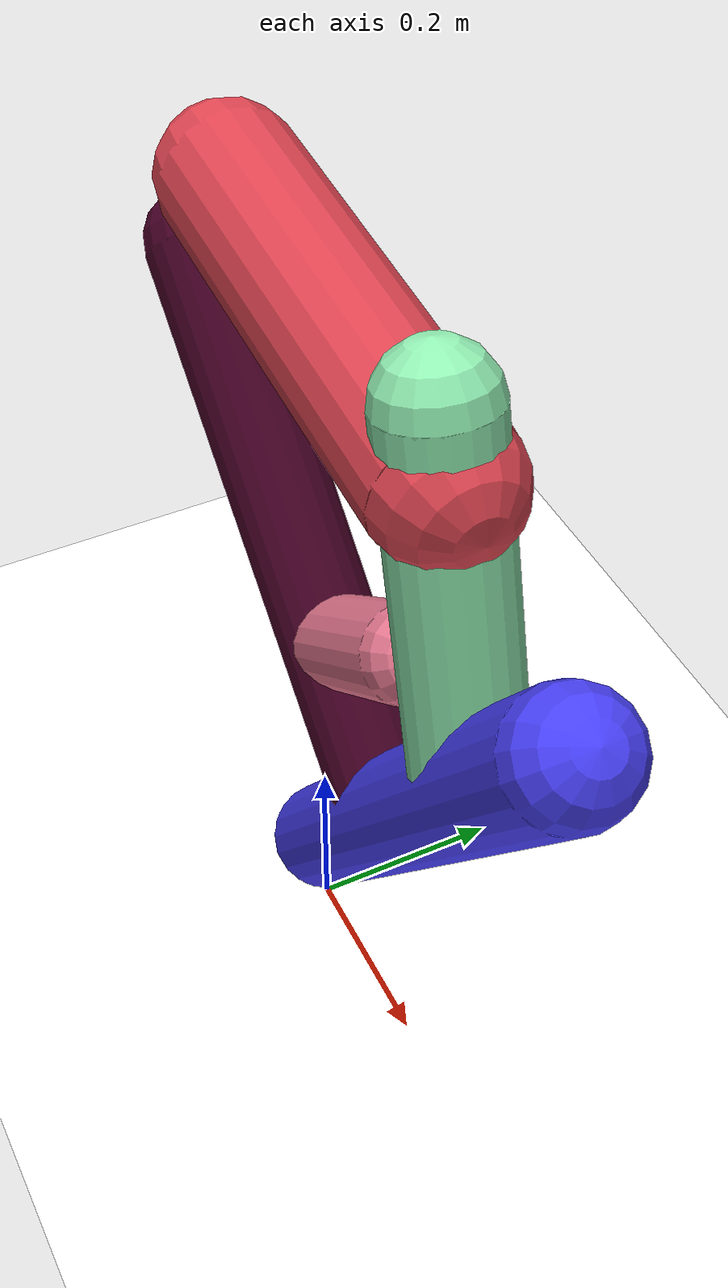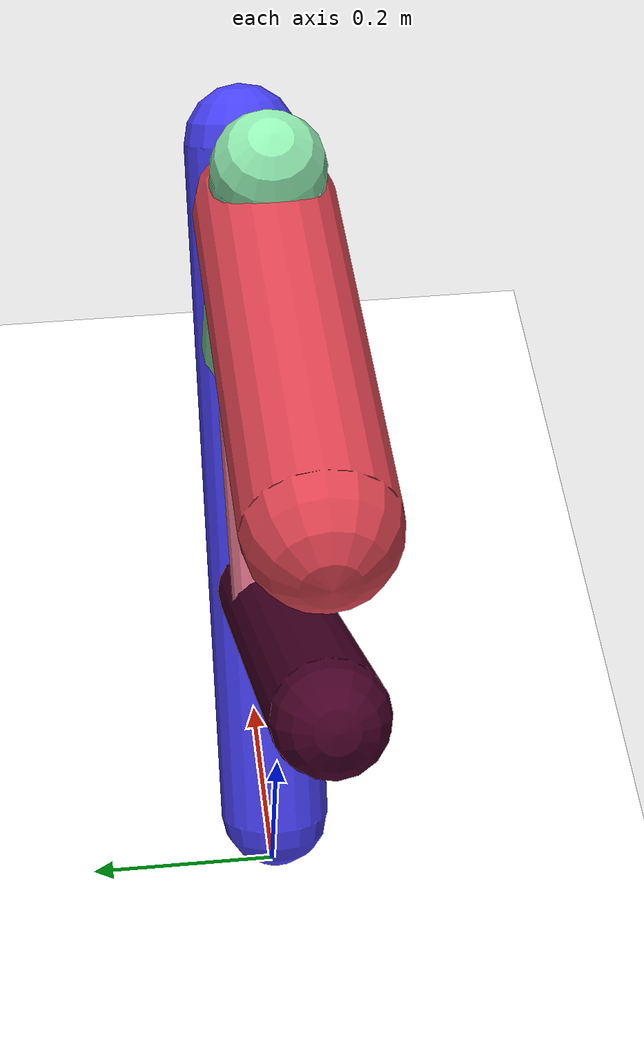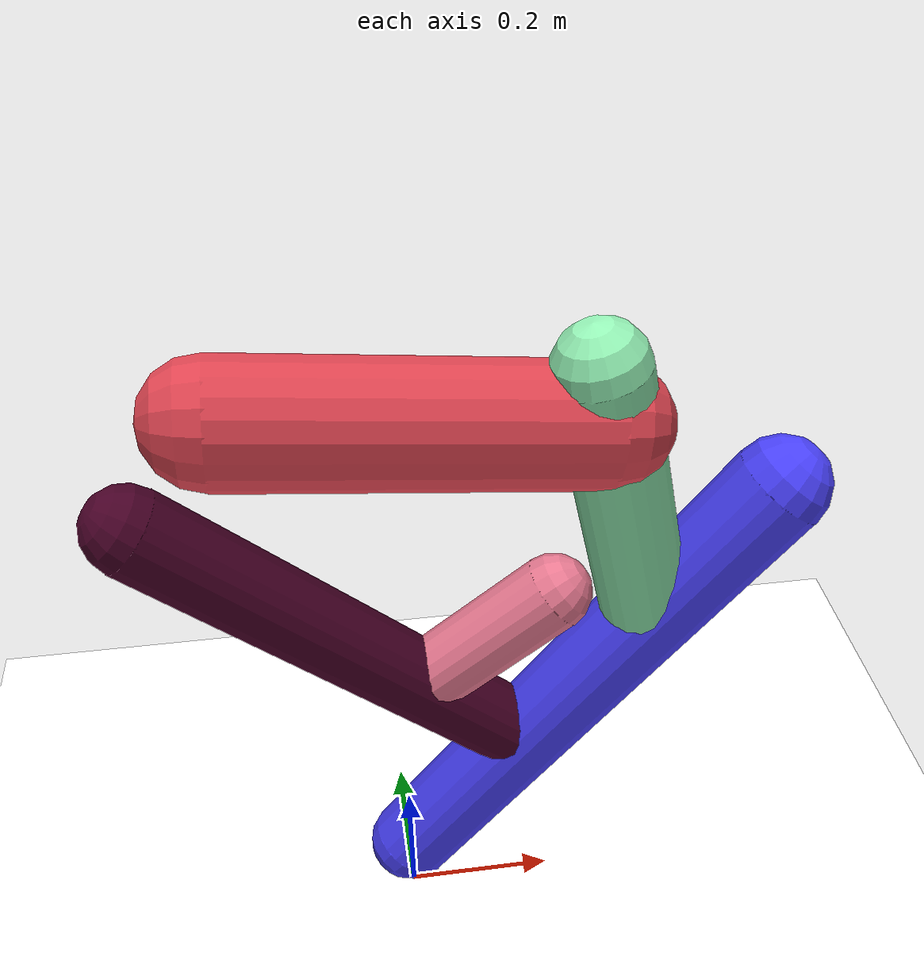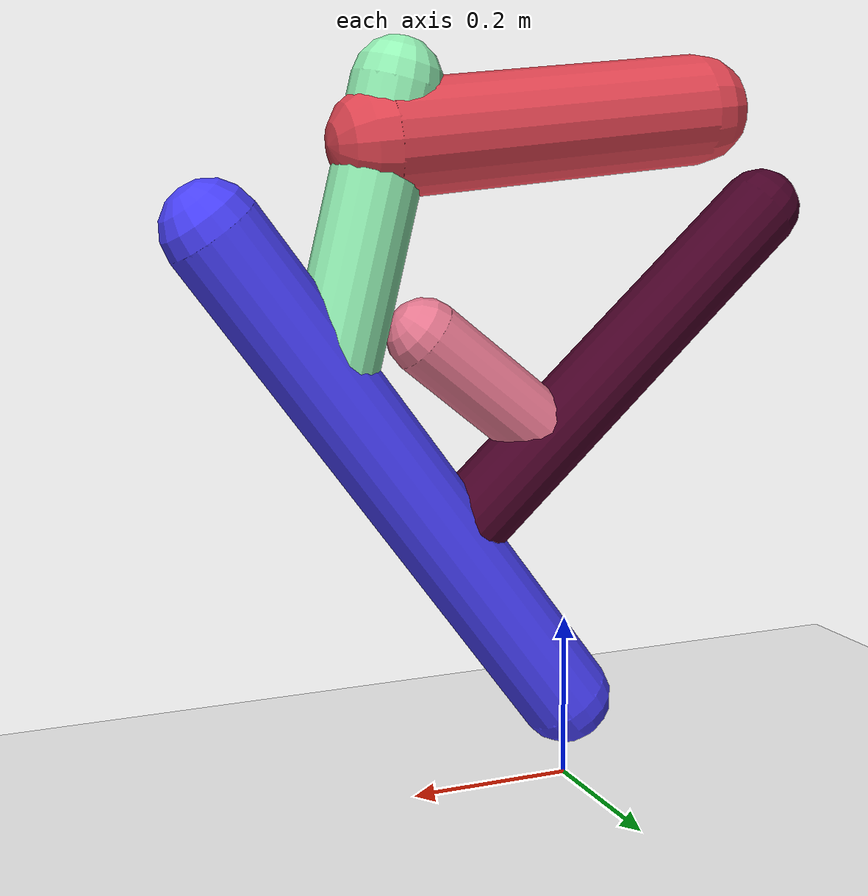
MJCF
<mujoco model="morphology">
  <option timestep="0.01"/>
  <default>
    <default class="/"/>
    <default class="0/"/>
    <default class="0/1/"/>
    <default class="0/1/2/"/>
    <default class="0/3/"/>
    <default class="0/3/4/"/>
  </default>
  <asset>
    <texture name="texplane" type="2d" builtin="checker" rgb1="0.10000000000000001 0.20000000000000001 0.29999999999999999" rgb2="0.20000000000000001 0.29999999999999999 0.40000000000000002" width="300" height="300"/>
    <material name="MatPlane" class="/" texture="texplane" texrepeat="20 20" specular="1" shininess="1" reflectance="0.5"/>
  </asset>
  <worldbody>
    <light name="//unnamed_light_0" class="/" directional="true" pos="0 0 1.5" dir="0 0 -1.3" cutoff="100" exponent="1" diffuse="1 1 1" specular="0.10000000000000001 0.10000000000000001 0.10000000000000001"/>
    <geom name="ground" class="/" type="plane" size="15 15 0.5" material="MatPlane" rgba="1 1 1 1"/>
    <site name="body" class="/" size="9.9999999999999995e-07 9.9999999999999995e-07 9.9999999999999995e-07" pos="0 0 0.10000000000000001"/>
    <body pos="0 0 0.10000000000000001" name="0/">
      <joint name="0/rootx/" class="/" type="slide" axis="1 0 0" limited="false" stiffness="0" armature="0" damping="0"/>
      <joint name="0/rootz/" class="/" type="slide" axis="0 0 1" limited="false" stiffness="0" armature="0" damping="0"/>
      <joint name="0/rooty/" class="/" type="hinge" axis="0 1 0" limited="false" stiffness="0" armature="0" damping="0"/>
      <geom name="0/geom" class="0/" type="capsule" contype="1" conaffinity="1" condim="3" size="0.057671728853075331" rgba="0.28042939053885108 0.24994570048540554 0.97153832646139771 1" friction="0.59999999999999998 0.10000000000000001 0.10000000000000001" fromto="0 0 0 0.42875962921058308 0 0.58224699517407896"/>
      <site name="0/end0" class="0/" size="0.0050000000000000001" pos="0.42875962921058308 0 0.58224699517407896"/>
      <site name="0/attach1" class="0/" size="9.9999999999999995e-07 9.9999999999999995e-07 9.9999999999999995e-07" pos="0.15469903014084058 0 0.21007818674927015"/>
      <body pos="0.15469903014084058 0 0.21007818674927015" name="0/1/">
        <joint name="0/1/joint/" class="0/" type="hinge" axis="0 1 0" limited="true" range="-58.882753140526518 58.882753140526518"/>
        <geom name="0/1/geom" class="0/1/" type="capsule" contype="1" conaffinity="1" condim="3" size="0.050147764539845208" rgba="0.27513241498482566 0.0035440290573005573 0.14730877564402689 1" friction="0.59999999999999998 0.10000000000000001 0.10000000000000001" fromto="0 0 0 -0.42373567326627143 0 0.3897360082590986"/>
        <site name="0/1/end1" class="0/1/" size="0.0050000000000000001" pos="-0.42373567326627143 0 0.3897360082590986"/>
        <site name="0/1/attach2" class="0/1/" size="9.9999999999999995e-07 9.9999999999999995e-07 9.9999999999999995e-07" pos="-0.12993030624827273 0 0.11950496997042603"/>
        <body pos="-0.12993030624827273 0 0.11950496997042603" name="0/1/2/">
          <geom name="0/1/2/geom" class="0/1/2/" type="capsule" contype="1" conaffinity="1" condim="3" size="0.045743136458458143" rgba="0.89397653326020821 0.46571811532186214 0.55848215367746312 1" friction="0.59999999999999998 0.10000000000000001 0.10000000000000001" fromto="0 0 0 0.15765511266270382 0 0.12768950476234875"/>
          <site name="0/1/2/end2" class="0/1/2/" size="0.0050000000000000001" pos="0.15765511266270382 0 0.12768950476234875"/>
        </body>
      </body>
      <site name="0/attach3" class="0/" size="9.9999999999999995e-07 9.9999999999999995e-07 9.9999999999999995e-07" pos="0.29853025917503107 0 0.40539811710638191"/>
      <body pos="0.29853025917503107 0 0.40539811710638191" name="0/3/">
        <joint name="0/3/joint/" class="0/" type="hinge" axis="0 1 0" limited="true" range="-53.730462325951869 53.730462325951869"/>
        <geom name="0/3/geom" class="0/3/" type="capsule" contype="1" conaffinity="1" condim="3" size="0.052507087316754637" rgba="0.56862733165077217 0.93371841239827003 0.69716787206111153 1" friction="0.59999999999999998 0.10000000000000001 0.10000000000000001" fromto="0 0 0 -0.084900957715085879 0 0.33979272397054805"/>
        <site name="0/3/end3" class="0/3/" size="0.0050000000000000001" pos="-0.084900957715085879 0 0.33979272397054805"/>
        <site name="0/3/attach4" class="0/3/" size="9.9999999999999995e-07 9.9999999999999995e-07 9.9999999999999995e-07" pos="-0.06867759299613177 0 0.27486317030967594"/>
        <body pos="-0.06867759299613177 0 0.27486317030967594" name="0/3/4/">
          <joint name="0/3/4/joint/" class="0/3/" type="hinge" axis="0 1 0" limited="true" range="-44.169042437363046 44.169042437363046"/>
          <geom name="0/3/4/geom" class="0/3/4/" type="capsule" contype="1" conaffinity="1" condim="3" size="0.066495735091088387" rgba="0.85965768036306189 0.26260556959663783 0.31255266177627583 1" friction="0.59999999999999998 0.10000000000000001 0.10000000000000001" fromto="0 0 0 -0.40056365444421199 0 0.039929849204236145"/>
          <site name="0/3/4/end4" class="0/3/4/" size="0.0050000000000000001" pos="-0.40056365444421199 0 0.039929849204236145"/>
        </body>
      </body>
      <camera name="0/side" class="0/" mode="trackcom" pos="0.40000000000000002 -4 0.20000000000000001" quat="0.70699999999999996 0.70699999999999996 0 0"/>
    </body>
  </worldbody>
  <actuator>
    <motor name="0/1/motor" class="0/1/" ctrllimited="true" ctrlrange="-1 1" gear="61" joint="0/1/joint/"/>
    <motor name="0/3/motor" class="0/3/" ctrllimited="true" ctrlrange="-1 1" gear="71" joint="0/3/joint/"/>
    <motor name="0/3/4/motor" class="0/3/4/" ctrllimited="true" ctrlrange="-1 1" gear="89" joint="0/3/4/joint/"/>
  </actuator>
  <sensor>
    <subtreelinvel name="velocity" body="0/"/>
  </sensor>
</mujoco>
